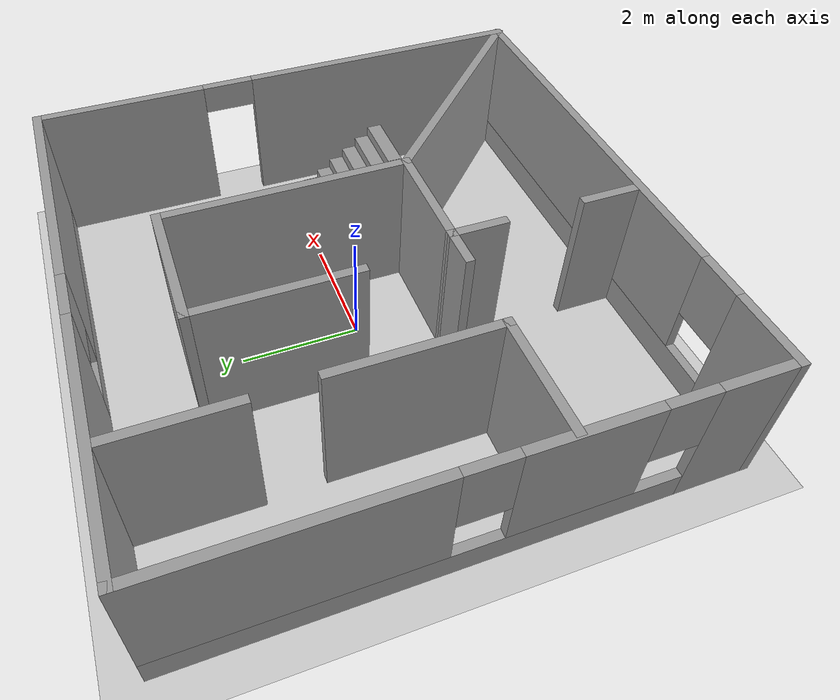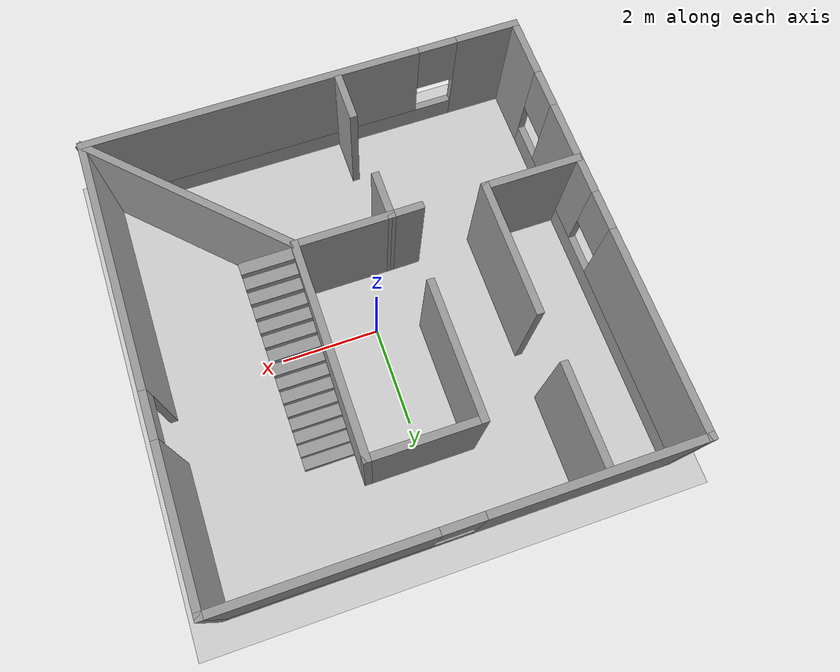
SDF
<sdf version="1.6">
 <world name="default">
  <light name="sun" type="directional">
   <pose>0 0 10 0 -0 0</pose>
   <diffuse>0.8 0.8 0.8 1</diffuse>
   <specular>0.2 0.2 0.2 1</specular>
   <attenuation>
    <range>1000</range>
    <constant>0.9</constant>
    <linear>0.01</linear>
    <quadratic>0.001</quadratic>
   </attenuation>
   <direction>-0.5 0.1 -0.9</direction>
  </light>
  <model name="ground_plane">
   <static>1</static>
   <link name="link">
    <collision name="collision">
     <geometry><plane><normal>0 0 1</normal><size>100 100</size></plane></geometry>
     <surface>
      <contact><collide_bitmask>65535</collide_bitmask></contact>
      <friction><ode><mu>100</mu><mu2>50</mu2></ode></friction>
     </surface>
    </collision>
    <visual name="visual">
     <cast_shadows>0</cast_shadows>
     <geometry><plane><normal>0 0 1</normal><size>100 100</size></plane></geometry>
     <material>
      <script><uri>file://media/materials/scripts/gazebo.material</uri><name>Gazebo/Grey</name></script>
     </material>
    </visual>
   </link>
  </model>
  <gravity>0 0 -9.8</gravity>
  <magnetic_field>6e-06 2.3e-05 -4.2e-05</magnetic_field>
  <atmosphere type="adiabatic"/>
  <physics name="default_physics" default="0" type="ode">
   <max_step_size>0.001</max_step_size>
   <real_time_factor>1</real_time_factor>
   <real_time_update_rate>1000</real_time_update_rate>
  </physics>
  <scene><ambient>0.4 0.4 0.4 1</ambient><background>0.7 0.7 0.7 1</background><shadows>1</shadows></scene>
  <audio><device>default</device></audio>
  <spherical_coordinates>
   <surface_model>EARTH_WGS84</surface_model>
   <latitude_deg>0</latitude_deg>
   <longitude_deg>0</longitude_deg>
   <elevation>0</elevation>
   <heading_deg>0</heading_deg>
  </spherical_coordinates>
  <model name="indoor1">
   <pose>-0.010131 -0.128411 0 0 -0 0</pose>
   <link name="Stairs_0">
    <visual name="Stairs_0_Visual_0">
     <pose>1.73897 2.27722 0.083333 0 -0 0</pose>
     <geometry><box><size>1 0.233333 0.166667</size></box></geometry>
     <material>
      <script><uri>file://media/materials/scripts/gazebo.material</uri><name>Gazebo/Grey</name></script>
      <ambient>1 1 1 1</ambient>
     </material>
     <meta><layer>0</layer></meta>
    </visual>
    <collision name="Stairs_0_Collision_0">
     <geometry><box><size>1 0.233333 0.166667</size></box></geometry>
     <pose>1.73897 2.27722 0.083333 0 -0 0</pose>
    </collision>
    <visual name="Stairs_0_Visual_1">
     <pose>1.73897 2.04388 0.25 0 -0 0</pose>
     <geometry><box><size>1 0.233333 0.166667</size></box></geometry>
     <material>
      <script><uri>file://media/materials/scripts/gazebo.material</uri><name>Gazebo/Grey</name></script>
      <ambient>1 1 1 1</ambient>
     </material>
     <meta><layer>0</layer></meta>
    </visual>
    <collision name="Stairs_0_Collision_1">
     <geometry><box><size>1 0.233333 0.166667</size></box></geometry>
     <pose>1.73897 2.04388 0.25 0 -0 0</pose>
    </collision>
    <visual name="Stairs_0_Visual_2">
     <pose>1.73897 1.81055 0.416667 0 -0 0</pose>
     <geometry><box><size>1 0.233333 0.166667</size></box></geometry>
     <material>
      <script><uri>file://media/materials/scripts/gazebo.material</uri><name>Gazebo/Grey</name></script>
      <ambient>1 1 1 1</ambient>
     </material>
     <meta><layer>0</layer></meta>
    </visual>
    <collision name="Stairs_0_Collision_2">
     <geometry><box><size>1 0.233333 0.166667</size></box></geometry>
     <pose>1.73897 1.81055 0.416667 0 -0 0</pose>
    </collision>
    <visual name="Stairs_0_Visual_3">
     <pose>1.73897 1.57722 0.583333 0 -0 0</pose>
     <geometry><box><size>1 0.233333 0.166667</size></box></geometry>
     <material>
      <script><uri>file://media/materials/scripts/gazebo.material</uri><name>Gazebo/Grey</name></script>
      <ambient>1 1 1 1</ambient>
     </material>
     <meta><layer>0</layer></meta>
    </visual>
    <collision name="Stairs_0_Collision_3">
     <geometry><box><size>1 0.233333 0.166667</size></box></geometry>
     <pose>1.73897 1.57722 0.583333 0 -0 0</pose>
    </collision>
    <visual name="Stairs_0_Visual_4">
     <pose>1.73897 1.34388 0.75 0 -0 0</pose>
     <geometry><box><size>1 0.233333 0.166667</size></box></geometry>
     <material>
      <script><uri>file://media/materials/scripts/gazebo.material</uri><name>Gazebo/Grey</name></script>
      <ambient>1 1 1 1</ambient>
     </material>
     <meta><layer>0</layer></meta>
    </visual>
    <collision name="Stairs_0_Collision_4">
     <geometry><box><size>1 0.233333 0.166667</size></box></geometry>
     <pose>1.73897 1.34388 0.75 0 -0 0</pose>
    </collision>
    <visual name="Stairs_0_Visual_5">
     <pose>1.73897 1.11055 0.916667 0 -0 0</pose>
     <geometry><box><size>1 0.233333 0.166667</size></box></geometry>
     <material>
      <script><uri>file://media/materials/scripts/gazebo.material</uri><name>Gazebo/Grey</name></script>
      <ambient>1 1 1 1</ambient>
     </material>
     <meta><layer>0</layer></meta>
    </visual>
    <collision name="Stairs_0_Collision_5">
     <geometry><box><size>1 0.233333 0.166667</size></box></geometry>
     <pose>1.73897 1.11055 0.916667 0 -0 0</pose>
    </collision>
    <visual name="Stairs_0_Visual_6">
     <pose>1.73897 0.877217 1.08333 0 -0 0</pose>
     <geometry><box><size>1 0.233333 0.166667</size></box></geometry>
     <material>
      <script><uri>file://media/materials/scripts/gazebo.material</uri><name>Gazebo/Grey</name></script>
      <ambient>1 1 1 1</ambient>
     </material>
     <meta><layer>0</layer></meta>
    </visual>
    <collision name="Stairs_0_Collision_6">
     <geometry><box><size>1 0.233333 0.166667</size></box></geometry>
     <pose>1.73897 0.877217 1.08333 0 -0 0</pose>
    </collision>
    <visual name="Stairs_0_Visual_7">
     <pose>1.73897 0.643883 1.25 0 -0 0</pose>
     <geometry><box><size>1 0.233333 0.166667</size></box></geometry>
     <material>
      <script><uri>file://media/materials/scripts/gazebo.material</uri><name>Gazebo/Grey</name></script>
      <ambient>1 1 1 1</ambient>
     </material>
     <meta><layer>0</layer></meta>
    </visual>
    <collision name="Stairs_0_Collision_7">
     <geometry><box><size>1 0.233333 0.166667</size></box></geometry>
     <pose>1.73897 0.643883 1.25 0 -0 0</pose>
    </collision>
    <visual name="Stairs_0_Visual_8">
     <pose>1.73897 0.41055 1.41667 0 -0 0</pose>
     <geometry><box><size>1 0.233333 0.166667</size></box></geometry>
     <material>
      <script><uri>file://media/materials/scripts/gazebo.material</uri><name>Gazebo/Grey</name></script>
      <ambient>1 1 1 1</ambient>
     </material>
     <meta><layer>0</layer></meta>
    </visual>
    <collision name="Stairs_0_Collision_8">
     <geometry><box><size>1 0.233333 0.166667</size></box></geometry>
     <pose>1.73897 0.41055 1.41667 0 -0 0</pose>
    </collision>
    <visual name="Stairs_0_Visual_9">
     <pose>1.73897 0.177217 1.58333 0 -0 0</pose>
     <geometry><box><size>1 0.233333 0.166667</size></box></geometry>
     <material>
      <script><uri>file://media/materials/scripts/gazebo.material</uri><name>Gazebo/Grey</name></script>
      <ambient>1 1 1 1</ambient>
     </material>
     <meta><layer>0</layer></meta>
    </visual>
    <collision name="Stairs_0_Collision_9">
     <geometry><box><size>1 0.233333 0.166667</size></box></geometry>
     <pose>1.73897 0.177217 1.58333 0 -0 0</pose>
    </collision>
    <visual name="Stairs_0_Visual_10">
     <pose>1.73897 -0.056117 1.75 0 -0 0</pose>
     <geometry><box><size>1 0.233333 0.166667</size></box></geometry>
     <material>
      <script><uri>file://media/materials/scripts/gazebo.material</uri><name>Gazebo/Grey</name></script>
      <ambient>1 1 1 1</ambient>
     </material>
     <meta><layer>0</layer></meta>
    </visual>
    <collision name="Stairs_0_Collision_10">
     <geometry><box><size>1 0.233333 0.166667</size></box></geometry>
     <pose>1.73897 -0.056117 1.75 0 -0 0</pose>
    </collision>
    <visual name="Stairs_0_Visual_11">
     <pose>1.73897 -0.28945 1.91667 0 -0 0</pose>
     <geometry><box><size>1 0.233333 0.166667</size></box></geometry>
     <material>
      <script><uri>file://media/materials/scripts/gazebo.material</uri><name>Gazebo/Grey</name></script>
      <ambient>1 1 1 1</ambient>
     </material>
     <meta><layer>0</layer></meta>
    </visual>
    <collision name="Stairs_0_Collision_11">
     <geometry><box><size>1 0.233333 0.166667</size></box></geometry>
     <pose>1.73897 -0.28945 1.91667 0 -0 0</pose>
    </collision>
    <visual name="Stairs_0_Visual_12">
     <pose>1.73897 -0.522783 2.08333 0 -0 0</pose>
     <geometry><box><size>1 0.233333 0.166667</size></box></geometry>
     <material>
      <script><uri>file://media/materials/scripts/gazebo.material</uri><name>Gazebo/Grey</name></script>
      <ambient>1 1 1 1</ambient>
     </material>
     <meta><layer>0</layer></meta>
    </visual>
    <collision name="Stairs_0_Collision_12">
     <geometry><box><size>1 0.233333 0.166667</size></box></geometry>
     <pose>1.73897 -0.522783 2.08333 0 -0 0</pose>
    </collision>
    <visual name="Stairs_0_Visual_13">
     <pose>1.73897 -0.756117 2.25 0 -0 0</pose>
     <geometry><box><size>1 0.233333 0.166667</size></box></geometry>
     <material>
      <script><uri>file://media/materials/scripts/gazebo.material</uri><name>Gazebo/Grey</name></script>
      <ambient>1 1 1 1</ambient>
     </material>
     <meta><layer>0</layer></meta>
    </visual>
    <collision name="Stairs_0_Collision_13">
     <geometry><box><size>1 0.233333 0.166667</size></box></geometry>
     <pose>1.73897 -0.756117 2.25 0 -0 0</pose>
    </collision>
    <visual name="Stairs_0_Visual_14">
     <pose>1.73897 -0.98945 2.41667 0 -0 0</pose>
     <geometry><box><size>1 0.233333 0.166667</size></box></geometry>
     <material>
      <script><uri>file://media/materials/scripts/gazebo.material</uri><name>Gazebo/Grey</name></script>
      <ambient>1 1 1 1</ambient>
     </material>
     <meta><layer>0</layer></meta>
    </visual>
    <collision name="Stairs_0_Collision_14">
     <geometry><box><size>1 0.233333 0.166667</size></box></geometry>
     <pose>1.73897 -0.98945 2.41667 0 -0 0</pose>
    </collision>
   </link>
   <link name="Wall_11">
    <pose>-0.015533 4.44053 0 0 -0 0</pose>
    <visual name="Wall_11_Visual_0">
     <pose>-2.44457 0 1.25 0 -0 0</pose>
     <geometry><box><size>4.11086 0.15 2.5</size></box></geometry>
     <material>
      <script><uri>file://media/materials/scripts/gazebo.material</uri><name>Gazebo/Grey</name></script>
      <ambient>1 1 1 1</ambient>
     </material>
     <meta><layer>0</layer></meta>
    </visual>
    <collision name="Wall_11_Collision_0">
     <geometry><box><size>4.11086 0.15 2.5</size></box></geometry>
     <pose>-2.44457 0 1.25 0 -0 0</pose>
    </collision>
    <visual name="Wall_11_Visual_1">
     <pose>2.05543 0 0.25 0 -0 0</pose>
     <geometry><box><size>4.88914 0.15 0.5</size></box></geometry>
     <material>
      <script><uri>file://media/materials/scripts/gazebo.material</uri><name>Gazebo/Grey</name></script>
      <ambient>1 1 1 1</ambient>
     </material>
     <meta><layer>0</layer></meta>
    </visual>
    <collision name="Wall_11_Collision_1">
     <geometry><box><size>4.88914 0.15 0.5</size></box></geometry>
     <pose>2.05543 0 0.25 0 -0 0</pose>
    </collision>
    <visual name="Wall_11_Visual_2">
     <pose>2.45543 0 1.5 0 -0 0</pose>
     <geometry><box><size>4.08914 0.15 2</size></box></geometry>
     <material>
      <script><uri>file://media/materials/scripts/gazebo.material</uri><name>Gazebo/Grey</name></script>
      <ambient>1 1 1 1</ambient>
     </material>
     <meta><layer>0</layer></meta>
    </visual>
    <collision name="Wall_11_Collision_2">
     <geometry><box><size>4.08914 0.15 2</size></box></geometry>
     <pose>2.45543 0 1.5 0 -0 0</pose>
    </collision>
    <visual name="Wall_11_Visual_3">
     <pose>0.01086 0 1.9 0 -0 0</pose>
     <geometry><box><size>0.8 0.15 1.2</size></box></geometry>
     <material>
      <script><uri>file://media/materials/scripts/gazebo.material</uri><name>Gazebo/Grey</name></script>
      <ambient>1 1 1 1</ambient>
     </material>
     <meta><layer>0</layer></meta>
    </visual>
    <collision name="Wall_11_Collision_3">
     <geometry><box><size>0.8 0.15 1.2</size></box></geometry>
     <pose>0.01086 0 1.9 0 -0 0</pose>
    </collision>
   </link>
   <link name="Wall_12">
    <pose>4.40947 0.015533 0 0 -0 -1.5708</pose>
    <visual name="Wall_12_Visual_0">
     <pose>-3.00331 0 1.25 0 -0 0</pose>
     <geometry><box><size>2.99339 0.15 2.5</size></box></geometry>
     <material>
      <script><uri>file://media/materials/scripts/gazebo.material</uri><name>Gazebo/Grey</name></script>
      <ambient>1 1 1 1</ambient>
     </material>
     <meta><layer>0</layer></meta>
    </visual>
    <collision name="Wall_12_Collision_0">
     <geometry><box><size>2.99339 0.15 2.5</size></box></geometry>
     <pose>-3.00331 0 1.25 0 -0 0</pose>
    </collision>
    <visual name="Wall_12_Visual_1">
     <pose>1.94669 0 1.25 0 -0 0</pose>
     <geometry><box><size>5.10661 0.15 2.5</size></box></geometry>
     <material>
      <script><uri>file://media/materials/scripts/gazebo.material</uri><name>Gazebo/Grey</name></script>
      <ambient>1 1 1 1</ambient>
     </material>
     <meta><layer>0</layer></meta>
    </visual>
    <collision name="Wall_12_Collision_1">
     <geometry><box><size>5.10661 0.15 2.5</size></box></geometry>
     <pose>1.94669 0 1.25 0 -0 0</pose>
    </collision>
    <visual name="Wall_12_Visual_2">
     <pose>-1.05661 0 2.25 0 -0 0</pose>
     <geometry><box><size>0.9 0.15 0.5</size></box></geometry>
     <material>
      <script><uri>file://media/materials/scripts/gazebo.material</uri><name>Gazebo/Grey</name></script>
      <ambient>1 1 1 1</ambient>
     </material>
     <meta><layer>0</layer></meta>
    </visual>
    <collision name="Wall_12_Collision_2">
     <geometry><box><size>0.9 0.15 0.5</size></box></geometry>
     <pose>-1.05661 0 2.25 0 -0 0</pose>
    </collision>
   </link>
   <link name="Wall_13">
    <collision name="Wall_13_Collision">
     <geometry><box><size>4.75 0.15 2.5</size></box></geometry>
     <pose>0 0 1.25 0 -0 0</pose>
    </collision>
    <visual name="Wall_13_Visual">
     <pose>0 0 1.25 0 -0 0</pose>
     <geometry><box><size>4.75 0.15 2.5</size></box></geometry>
     <material>
      <script><uri>file://media/materials/scripts/gazebo.material</uri><name>Gazebo/Grey</name></script>
      <ambient>1 1 1 1</ambient>
     </material>
     <meta><layer>0</layer></meta>
    </visual>
    <pose>2.78312 -2.78312 0 0 -0 2.35619</pose>
   </link>
   <link name="Wall_14">
    <collision name="Wall_14_Collision">
     <geometry><box><size>2 0.15 2.5</size></box></geometry>
     <pose>0 0 1.25 0 -0 0</pose>
    </collision>
    <visual name="Wall_14_Visual">
     <pose>0 0 1.25 0 -0 0</pose>
     <geometry><box><size>2 0.15 2.5</size></box></geometry>
     <material>
      <script><uri>file://media/materials/scripts/gazebo.material</uri><name>Gazebo/Grey</name></script>
      <ambient>1 1 1 1</ambient>
     </material>
     <meta><layer>0</layer></meta>
    </visual>
    <pose>0.231776 -1.15678 0 0 -0 3.14159</pose>
   </link>
   <link name="Wall_15">
    <collision name="Wall_15_Collision">
     <geometry><box><size>1 0.15 2.5</size></box></geometry>
     <pose>0 0 1.25 0 -0 0</pose>
    </collision>
    <visual name="Wall_15_Visual">
     <pose>0 0 1.25 0 -0 0</pose>
     <geometry><box><size>1 0.15 2.5</size></box></geometry>
     <material>
      <script><uri>file://media/materials/scripts/gazebo.material</uri><name>Gazebo/Grey</name></script>
      <ambient>1 1 1 1</ambient>
     </material>
     <meta><layer>0</layer></meta>
    </visual>
    <pose>-0.693224 -1.58178 0 0 -0 -1.5708</pose>
   </link>
   <link name="Wall_19">
    <collision name="Wall_19_Collision">
     <geometry><box><size>1 0.15 2.5</size></box></geometry>
     <pose>0 0 1.25 0 -0 0</pose>
    </collision>
    <visual name="Wall_19_Visual">
     <pose>0 0 1.25 0 -0 0</pose>
     <geometry><box><size>1 0.15 2.5</size></box></geometry>
     <material>
      <script><uri>file://media/materials/scripts/gazebo.material</uri><name>Gazebo/Grey</name></script>
      <ambient>1 1 1 1</ambient>
     </material>
     <meta><layer>0</layer></meta>
    </visual>
    <pose>-0.689471 -3.85537 0 0 -0 -1.5708</pose>
   </link>
   <link name="Wall_21">
    <collision name="Wall_21_Collision">
     <geometry><box><size>2 0.15 2.5</size></box></geometry>
     <pose>0 0 1.25 0 -0 0</pose>
    </collision>
    <visual name="Wall_21_Visual">
     <pose>0 0 1.25 0 -0 0</pose>
     <geometry><box><size>2 0.15 2.5</size></box></geometry>
     <material>
      <script><uri>file://media/materials/scripts/gazebo.material</uri><name>Gazebo/Grey</name></script>
      <ambient>1 1 1 1</ambient>
     </material>
     <meta><layer>0</layer></meta>
    </visual>
    <pose>-3.48467 -1.16094 0 0 -0 0</pose>
   </link>
   <link name="Wall_23">
    <collision name="Wall_23_Collision">
     <geometry><box><size>2.75 0.15 2.5</size></box></geometry>
     <pose>0 0 1.25 0 -0 0</pose>
    </collision>
    <visual name="Wall_23_Visual">
     <pose>0 0 1.25 0 -0 0</pose>
     <geometry><box><size>2.75 0.15 2.5</size></box></geometry>
     <material>
      <script><uri>file://media/materials/scripts/gazebo.material</uri><name>Gazebo/Grey</name></script>
      <ambient>1 1 1 1</ambient>
     </material>
     <meta><layer>0</layer></meta>
    </visual>
    <pose>-2.55967 0.13906 0 0 -0 1.5708</pose>
   </link>
   <link name="Wall_25">
    <collision name="Wall_25_Collision">
     <geometry><box><size>0.715664 0.15 2.5</size></box></geometry>
     <pose>0 0 1.25 0 -0 0</pose>
    </collision>
    <visual name="Wall_25_Visual">
     <pose>0 0 1.25 0 -0 0</pose>
     <geometry><box><size>0.715664 0.15 2.5</size></box></geometry>
     <material>
      <script><uri>file://media/materials/scripts/gazebo.material</uri><name>Gazebo/Grey</name></script>
      <ambient>1 1 1 1</ambient>
     </material>
     <meta><layer>0</layer></meta>
    </visual>
    <pose>-0.976048 -1.15886 0 0 -0 0.007362</pose>
   </link>
   <link name="Wall_27">
    <collision name="Wall_27_Collision">
     <geometry><box><size>2 0.15 2.5</size></box></geometry>
     <pose>0 0 1.25 0 -0 0</pose>
    </collision>
    <visual name="Wall_27_Visual">
     <pose>0 0 1.25 0 -0 0</pose>
     <geometry><box><size>2 0.15 2.5</size></box></geometry>
     <material>
      <script><uri>file://media/materials/scripts/gazebo.material</uri><name>Gazebo/Grey</name></script>
      <ambient>1 1 1 1</ambient>
     </material>
     <meta><layer>0</layer></meta>
    </visual>
    <pose>-2.60484 3.43489 0 0 -0 1.5708</pose>
   </link>
   <link name="Wall_29">
    <collision name="Wall_29_Collision">
     <geometry><box><size>4.25 0.15 2.5</size></box></geometry>
     <pose>0 0 1.25 0 -0 0</pose>
    </collision>
    <visual name="Wall_29_Visual">
     <pose>0 0 1.25 0 -0 0</pose>
     <geometry><box><size>4.25 0.15 2.5</size></box></geometry>
     <material>
      <script><uri>file://media/materials/scripts/gazebo.material</uri><name>Gazebo/Grey</name></script>
      <ambient>1 1 1 1</ambient>
     </material>
     <meta><layer>0</layer></meta>
    </visual>
    <pose>1.15678 0.893224 0 0 -0 1.5708</pose>
   </link>
   <link name="Wall_30">
    <collision name="Wall_30_Collision">
     <geometry><box><size>2.25 0.15 2.5</size></box></geometry>
     <pose>0 0 1.25 0 -0 0</pose>
    </collision>
    <visual name="Wall_30_Visual">
     <pose>0 0 1.25 0 -0 0</pose>
     <geometry><box><size>2.25 0.15 2.5</size></box></geometry>
     <material>
      <script><uri>file://media/materials/scripts/gazebo.material</uri><name>Gazebo/Grey</name></script>
      <ambient>1 1 1 1</ambient>
     </material>
     <meta><layer>0</layer></meta>
    </visual>
    <pose>0.106776 2.94322 0 0 -0 3.14159</pose>
   </link>
   <link name="Wall_31">
    <collision name="Wall_31_Collision">
     <geometry><box><size>2.75 0.15 2.5</size></box></geometry>
     <pose>0 0 1.25 0 -0 0</pose>
    </collision>
    <visual name="Wall_31_Visual">
     <pose>0 0 1.25 0 -0 0</pose>
     <geometry><box><size>2.75 0.15 2.5</size></box></geometry>
     <material>
      <script><uri>file://media/materials/scripts/gazebo.material</uri><name>Gazebo/Grey</name></script>
      <ambient>1 1 1 1</ambient>
     </material>
     <meta><layer>0</layer></meta>
    </visual>
    <pose>-0.943224 1.64322 0 0 -0 -1.5708</pose>
   </link>
   <link name="Wall_6">
    <pose>-0.015533 -4.40947 0 0 -0 0</pose>
    <visual name="Wall_6_Visual_0">
     <pose>-3.83643 0 1.25 0 -0 0</pose>
     <geometry><box><size>1.32715 0.15 2.5</size></box></geometry>
     <material>
      <script><uri>file://media/materials/scripts/gazebo.material</uri><name>Gazebo/Grey</name></script>
      <ambient>1 1 1 1</ambient>
     </material>
     <meta><layer>0</layer></meta>
    </visual>
    <collision name="Wall_6_Collision_0">
     <geometry><box><size>1.32715 0.15 2.5</size></box></geometry>
     <pose>-3.83643 0 1.25 0 -0 0</pose>
    </collision>
    <visual name="Wall_6_Visual_1">
     <pose>0.663575 0 0.25 0 -0 0</pose>
     <geometry><box><size>7.67285 0.15 0.5</size></box></geometry>
     <material>
      <script><uri>file://media/materials/scripts/gazebo.material</uri><name>Gazebo/Grey</name></script>
      <ambient>1 1 1 1</ambient>
     </material>
     <meta><layer>0</layer></meta>
    </visual>
    <collision name="Wall_6_Collision_1">
     <geometry><box><size>7.67285 0.15 0.5</size></box></geometry>
     <pose>0.663575 0 0.25 0 -0 0</pose>
    </collision>
    <visual name="Wall_6_Visual_2">
     <pose>1.06357 0 1.5 0 -0 0</pose>
     <geometry><box><size>6.87285 0.15 2</size></box></geometry>
     <material>
      <script><uri>file://media/materials/scripts/gazebo.material</uri><name>Gazebo/Grey</name></script>
      <ambient>1 1 1 1</ambient>
     </material>
     <meta><layer>0</layer></meta>
    </visual>
    <collision name="Wall_6_Collision_2">
     <geometry><box><size>6.87285 0.15 2</size></box></geometry>
     <pose>1.06357 0 1.5 0 -0 0</pose>
    </collision>
    <visual name="Wall_6_Visual_3">
     <pose>-2.77285 0 1.9 0 -0 0</pose>
     <geometry><box><size>0.8 0.15 1.2</size></box></geometry>
     <material>
      <script><uri>file://media/materials/scripts/gazebo.material</uri><name>Gazebo/Grey</name></script>
      <ambient>1 1 1 1</ambient>
     </material>
     <meta><layer>0</layer></meta>
    </visual>
    <collision name="Wall_6_Collision_3">
     <geometry><box><size>0.8 0.15 1.2</size></box></geometry>
     <pose>-2.77285 0 1.9 0 -0 0</pose>
    </collision>
   </link>
   <link name="Wall_9">
    <pose>-4.44053 0.015533 0 0 -0 1.5708</pose>
    <visual name="Wall_9_Visual_0">
     <pose>-3.84888 0 1.25 0 -0 0</pose>
     <geometry><box><size>1.30225 0.15 2.5</size></box></geometry>
     <material>
      <script><uri>file://media/materials/scripts/gazebo.material</uri><name>Gazebo/Grey</name></script>
      <ambient>1 1 1 1</ambient>
     </material>
     <meta><layer>0</layer></meta>
    </visual>
    <collision name="Wall_9_Collision_0">
     <geometry><box><size>1.30225 0.15 2.5</size></box></geometry>
     <pose>-3.84888 0 1.25 0 -0 0</pose>
    </collision>
    <visual name="Wall_9_Visual_1">
     <pose>0.651122 0 0.25 0 -0 0</pose>
     <geometry><box><size>7.69775 0.15 0.5</size></box></geometry>
     <material>
      <script><uri>file://media/materials/scripts/gazebo.material</uri><name>Gazebo/Grey</name></script>
      <ambient>1 1 1 1</ambient>
     </material>
     <meta><layer>0</layer></meta>
    </visual>
    <collision name="Wall_9_Collision_1">
     <geometry><box><size>7.69775 0.15 0.5</size></box></geometry>
     <pose>0.651122 0 0.25 0 -0 0</pose>
    </collision>
    <visual name="Wall_9_Visual_2">
     <pose>-1.4059 0 1.5 0 -0 0</pose>
     <geometry><box><size>1.98371 0.15 2</size></box></geometry>
     <material>
      <script><uri>file://media/materials/scripts/gazebo.material</uri><name>Gazebo/Grey</name></script>
      <ambient>1 1 1 1</ambient>
     </material>
     <meta><layer>0</layer></meta>
    </visual>
    <collision name="Wall_9_Collision_2">
     <geometry><box><size>1.98371 0.15 2</size></box></geometry>
     <pose>-1.4059 0 1.5 0 -0 0</pose>
    </collision>
    <visual name="Wall_9_Visual_3">
     <pose>2.44298 0 1.5 0 -0 0</pose>
     <geometry><box><size>4.11404 0.15 2</size></box></geometry>
     <material>
      <script><uri>file://media/materials/scripts/gazebo.material</uri><name>Gazebo/Grey</name></script>
      <ambient>1 1 1 1</ambient>
     </material>
     <meta><layer>0</layer></meta>
    </visual>
    <collision name="Wall_9_Collision_3">
     <geometry><box><size>4.11404 0.15 2</size></box></geometry>
     <pose>2.44298 0 1.5 0 -0 0</pose>
    </collision>
    <visual name="Wall_9_Visual_4">
     <pose>-2.79775 0 1.9 0 -0 0</pose>
     <geometry><box><size>0.8 0.15 1.2</size></box></geometry>
     <material>
      <script><uri>file://media/materials/scripts/gazebo.material</uri><name>Gazebo/Grey</name></script>
      <ambient>1 1 1 1</ambient>
     </material>
     <meta><layer>0</layer></meta>
    </visual>
    <collision name="Wall_9_Collision_4">
     <geometry><box><size>0.8 0.15 1.2</size></box></geometry>
     <pose>-2.79775 0 1.9 0 -0 0</pose>
    </collision>
    <visual name="Wall_9_Visual_5">
     <pose>-0.014045 0 1.9 0 -0 0</pose>
     <geometry><box><size>0.8 0.15 1.2</size></box></geometry>
     <material>
      <script><uri>file://media/materials/scripts/gazebo.material</uri><name>Gazebo/Grey</name></script>
      <ambient>1 1 1 1</ambient>
     </material>
     <meta><layer>0</layer></meta>
    </visual>
    <collision name="Wall_9_Collision_5">
     <geometry><box><size>0.8 0.15 1.2</size></box></geometry>
     <pose>-0.014045 0 1.9 0 -0 0</pose>
    </collision>
   </link>
   <static>1</static>
  </model>
 </world>
</sdf>
